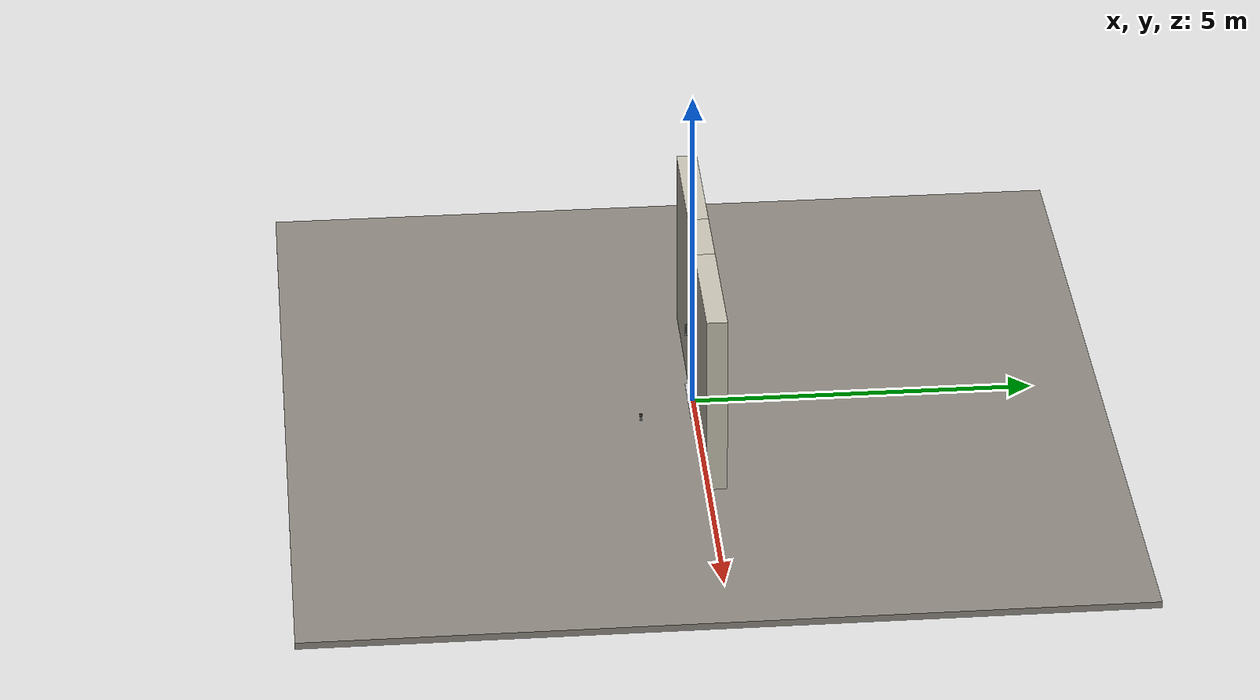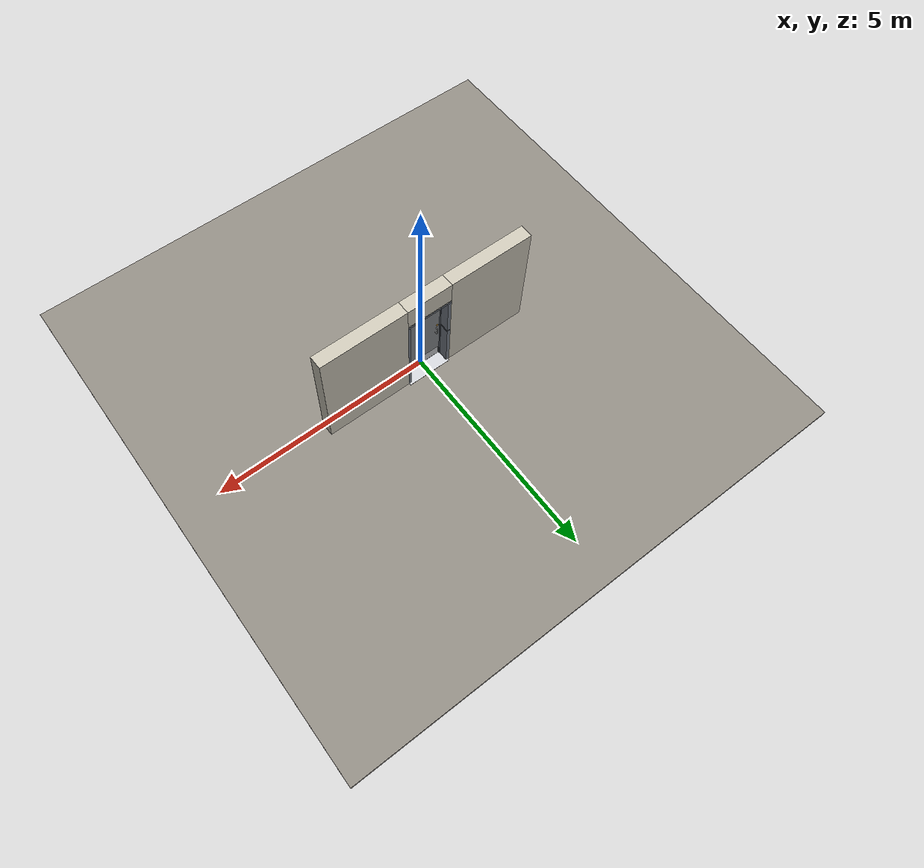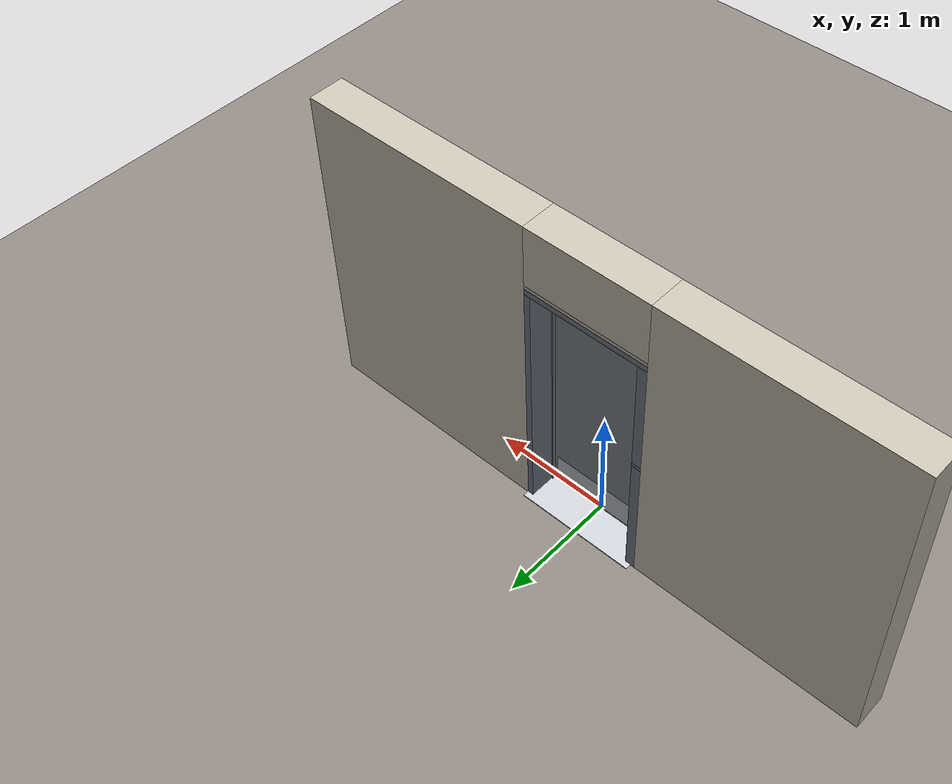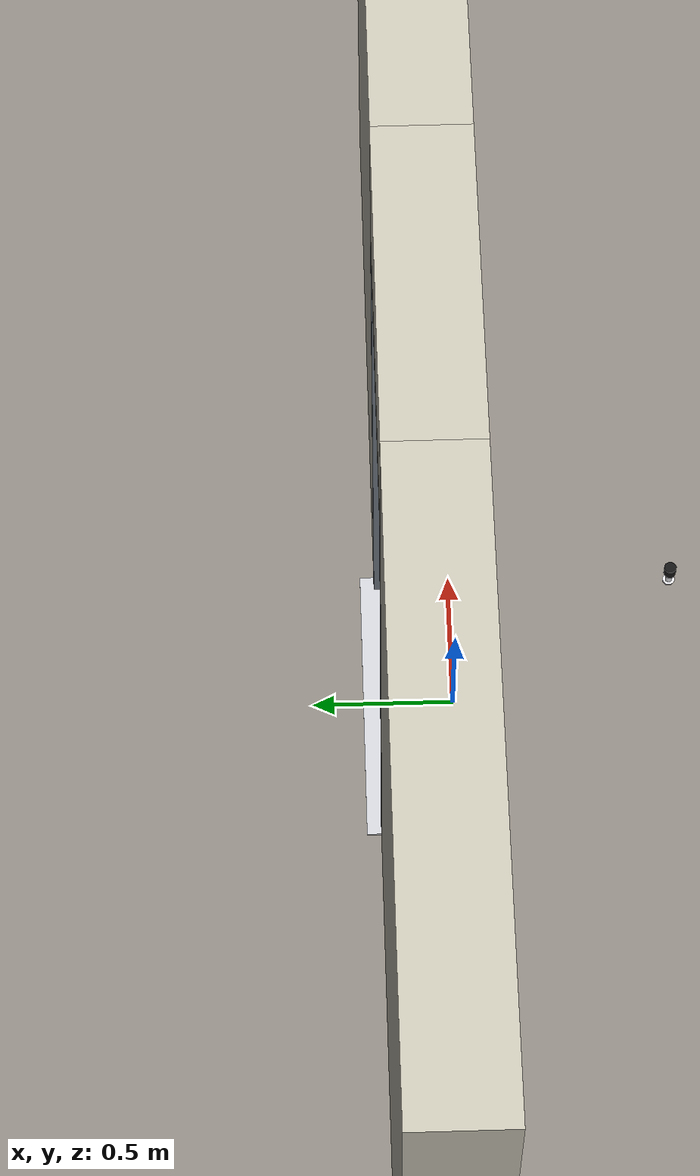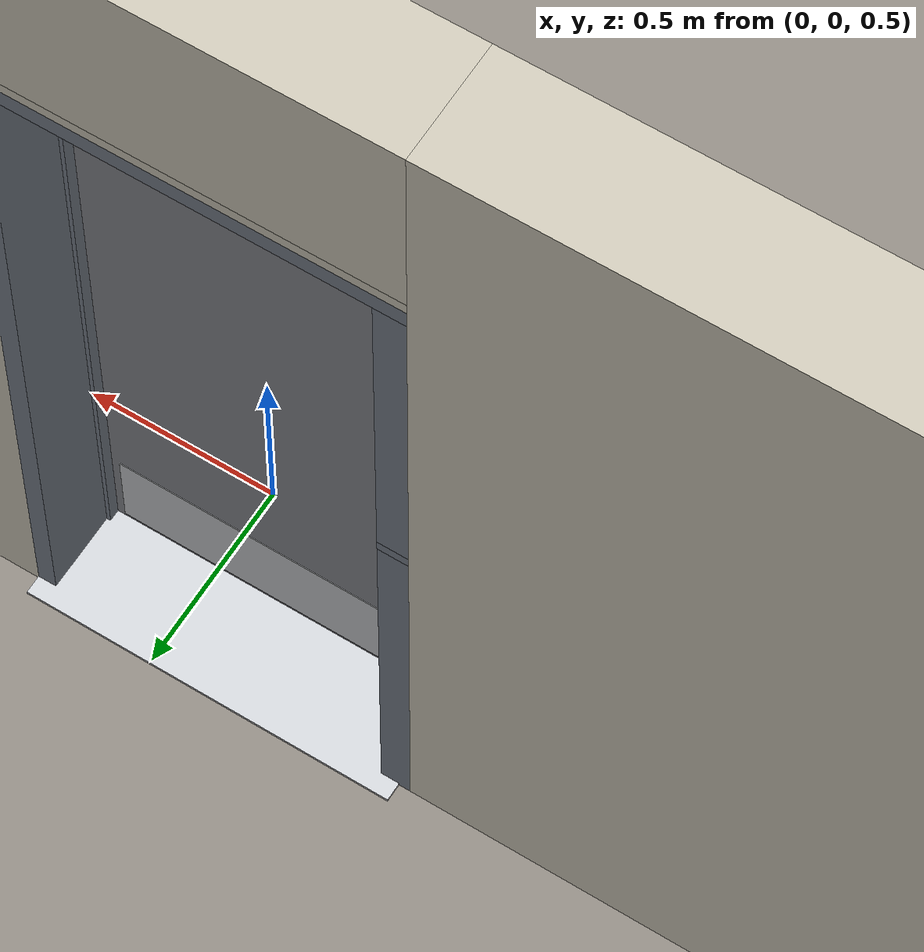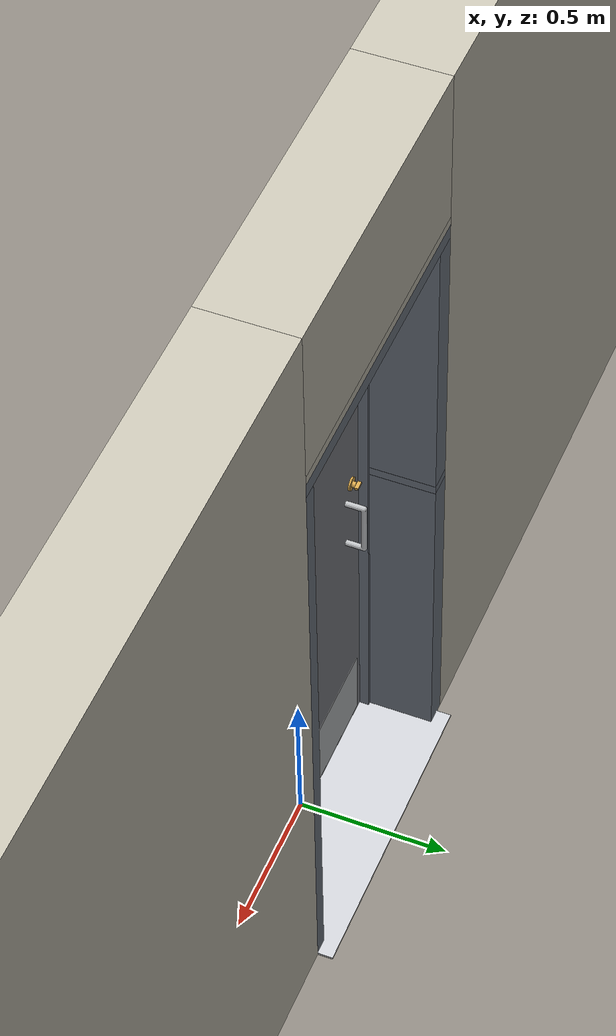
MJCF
<?xml version="1.0" ?>
<mujoco model="db0428_swing_single_full">
  <compiler angle="radian" meshdir="../../hardware" texturedir="../../textures" autolimits="true" inertiafromgeom="false"/>
  <option timestep="0.002" integrator="implicitfast" cone="elliptic" impratio="10" noslip_iterations="3">
    <flag multiccd="enable"/>
  </option>
  <size memory="16M"/>
  <default>
    <geom condim="4" solref="0.005 1" solimp="0.95 0.99 0.001"/>
    <joint solreflimit="0.005 1" solimplimit="0.95 0.99 0.001"/>
    <tendon solreflimit="0.005 1"/>
    <equality solref="0.002 1"/>
  </default>
  <visual>
    <headlight ambient="0.4 0.4 0.4" diffuse="0.7 0.7 0.7" specular="0.2 0.2 0.2"/>
    <quality shadowsize="4096"/>
    <map znear="0.01" zfar="60"/>
  </visual>
  <asset>
    <mesh name="cyl_face_e9e5036966" file="cyl_face_e9e5036966.obj"/>
    <mesh name="hinge_e22b26c0c1" file="hinge_e22b26c0c1.obj"/>
    <mesh name="hinge_jamb_e1d088f8dc" file="hinge_jamb_e1d088f8dc.obj"/>
    <mesh name="pull_1e5d69a91a" file="pull_1e5d69a91a.obj"/>
    <mesh name="thumbturn_eb5c9899a3" file="thumbturn_eb5c9899a3.obj"/>
    <material name="mat_floor" rgba="0.55 0.53 0.5 1" specular="0.2" shininess="0.15" reflectance="0"/>
    <material name="mat_wall" rgba="0.78 0.76 0.7 1" specular="0.2" shininess="0.1" reflectance="0"/>
    <material name="mat_leaf" rgba="0.5 0.51 0.53 1" specular="0.23" shininess="0.51" reflectance="0.02"/>
    <material name="mat_leaf_louver" rgba="0.425 0.433 0.451 1" specular="0.2" shininess="0.4" reflectance="0"/>
    <material name="mat_hinge" rgba="0.65 0.66 0.68 1" specular="0.74" shininess="0.5" reflectance="0.36"/>
    <material name="mat_op_stainless" rgba="0.75 0.76 0.77 1" specular="0.8" shininess="0.65" reflectance="0.4"/>
    <material name="mat_deadbolt" rgba="0.85 0.66 0.3 1" specular="0.8" shininess="0.75" reflectance="0.4"/>
    <material name="mat_frame" rgba="0.45 0.48 0.52 1" specular="0.32" shininess="0.6" reflectance="0.08"/>
    <material name="mat_seal" rgba="0.1 0.1 0.1 1" specular="0.2" shininess="0.1" reflectance="0"/>
    <material name="mat_threshold" rgba="0.8 0.81 0.83 1" specular="0.8" shininess="0.6" reflectance="0.4"/>
    <material name="mat_kick" rgba="0.75 0.76 0.77 1" specular="0.8" shininess="0.65" reflectance="0.4"/>
    <material name="mat_placard" rgba="0.95 0.75 0.05 1" specular="0.2" shininess="0.5" reflectance="0"/>
    <material name="mat_bumper_stop" rgba="0.08 0.08 0.08 1" specular="0.2" shininess="0.1" reflectance="0"/>
    <material name="mat_stop_base" rgba="0.9 0.9 0.92 1" specular="0.8" shininess="0.9" reflectance="0.4"/>
    <texture name="skybox" type="skybox" builtin="gradient" rgb1="0.6 0.7 0.85" rgb2="0.9 0.92 0.95" width="256" height="256"/>
  </asset>
  <worldbody>
    <light name="sun" pos="1.5 -2.5 4" dir="-0.3 0.5 -0.8" directional="true" diffuse="0.8 0.8 0.8" specular="0.3 0.3 0.3" castshadow="true"/>
    <light name="fill" pos="-1.5 2.5 3" dir="0.3 -0.5 -0.7" directional="true" diffuse="0.35 0.35 0.4" castshadow="false"/>
    <camera name="robot_view" pos="0 -2.516812 1.812087" xyaxes="1 0 0 0 0.26963 0.962964" fovy="52"/>
    <camera name="far_view" pos="0 2.758812 1.812087" xyaxes="-1 0 0 0 -0.26963 0.962964" fovy="52"/>
    <camera name="iso" pos="-2.004737 -2.094762 2.234138" xyaxes="0.741536 -0.670913 0 0.242917 0.268487 0.932151" fovy="46"/>
    <camera name="detail_handle" pos="-0.1715 -0.882 1.296" xyaxes="0.97561 0.219512 0 -0.070934 0.315262 0.94635" fovy="38"/>
    <geom name="floor" type="box" size="6 6 0.05" pos="0 0 -0.05" material="mat_floor" group="0" contype="1" conaffinity="1" friction="0.8 0.005 0.0001" density="2400"/>
    <geom name="wall_left" type="box" size="0.97975 0.15 1.3735" pos="-1.52025 0.121 1.3735" material="mat_wall" group="0" contype="1" conaffinity="1" friction="0.6 0.005 0.0001" density="800"/>
    <geom name="wall_right" type="box" size="0.99475 0.15 1.3735" pos="1.50525 0.121 1.3735" material="mat_wall" group="0" contype="1" conaffinity="1" friction="0.6 0.005 0.0001" density="800"/>
    <geom name="wall_header" type="box" size="0.5255 0.15 0.26" pos="-0.015 0.121 2.487" material="mat_wall" group="0" contype="1" conaffinity="1" friction="0.6 0.005 0.0001" density="800"/>
    <geom name="hinge_0_jamb" type="mesh" mesh="hinge_jamb_e1d088f8dc" pos="0.4575 -0.029 0.259" quat="0 0 1 0" material="mat_hinge" group="1" contype="0" conaffinity="0" density="7850"/>
    <geom name="hinge_1_jamb" type="mesh" mesh="hinge_jamb_e1d088f8dc" pos="0.4575 -0.029 1.076" quat="0 0 1 0" material="mat_hinge" group="1" contype="0" conaffinity="0" density="7850"/>
    <geom name="hinge_2_jamb" type="mesh" mesh="hinge_jamb_e1d088f8dc" pos="0.4575 -0.029 1.963" quat="0 0 1 0" material="mat_hinge" group="1" contype="0" conaffinity="0" density="7850"/>
    <geom name="leaf_deadbolt_strike_b" type="box" size="0.0155 0.003 0.0005" pos="-0.46 0 1.1375" quat="0.5 0.5 0.5 0.5" material="mat_deadbolt" group="1" contype="0" conaffinity="0" density="7800"/>
    <geom name="leaf_deadbolt_strike_l" type="box" size="0.003 0.0155 0.0005" pos="-0.46 -0.0125 1.156" quat="0.5 0.5 0.5 0.5" material="mat_deadbolt" group="1" contype="0" conaffinity="0" density="7800"/>
    <geom name="leaf_deadbolt_strike_t" type="box" size="0.0155 0.003 0.0005" pos="-0.46 0 1.1745" quat="0.5 0.5 0.5 0.5" material="mat_deadbolt" group="1" contype="0" conaffinity="0" density="7800"/>
    <geom name="leaf_deadbolt_strike_r" type="box" size="0.003 0.0155 0.0005" pos="-0.46 0.0125 1.156" quat="0.5 0.5 0.5 0.5" material="mat_deadbolt" group="1" contype="0" conaffinity="0" density="7800"/>
    <geom name="jamb_hinge" type="box" size="0.025 0.15 1.0735" pos="0.4855 0.121 1.0735" material="mat_frame" group="0" contype="1" conaffinity="1" friction="0.6 0.005 0.0001" density="300"/>
    <geom name="strike_1156_wall_n" type="box" size="0.04 0.13075 0.0155" pos="-0.5005 0.14025 1.156" material="mat_frame" group="0" contype="1" conaffinity="1" friction="0.6 0.005 0.0001" density="300"/>
    <geom name="strike_1156_wall_p" type="box" size="0.04 0.00975 0.0155" pos="-0.5005 -0.01925 1.156" material="mat_frame" group="0" contype="1" conaffinity="1" friction="0.6 0.005 0.0001" density="300"/>
    <geom name="strike_1156_back" type="box" size="0.0253 0.0095 0.0155" pos="-0.5152 0 1.156" material="mat_frame" group="0" contype="1" conaffinity="1" friction="0.6 0.005 0.0001" density="300"/>
    <geom name="jamb_strike_0" type="box" size="0.04 0.15 0.57025" pos="-0.5005 0.121 0.57025" material="mat_frame" group="0" contype="1" conaffinity="1" friction="0.6 0.005 0.0001" density="300"/>
    <geom name="jamb_strike_1" type="box" size="0.04 0.15 0.48775" pos="-0.5005 0.121 1.65925" material="mat_frame" group="0" contype="1" conaffinity="1" friction="0.6 0.005 0.0001" density="300"/>
    <geom name="jamb_head" type="box" size="0.5255 0.15 0.025" pos="-0.015 0.121 2.172" material="mat_frame" group="0" contype="1" conaffinity="1" friction="0.6 0.005 0.0001" density="300"/>
    <geom name="head_stud" type="box" size="0.5255 0.15 0.015" pos="-0.015 0.121 2.212" material="mat_wall" group="0" contype="1" conaffinity="1" friction="0.6 0.005 0.0001" density="500"/>
    <geom name="stop_hinge" type="box" size="0.0055 0.016 1.0735" pos="0.455 0.0385 1.0735" material="mat_frame" group="0" contype="1" conaffinity="1" friction="0.6 0.005 0.0001" density="300"/>
    <geom name="stop_strike" type="box" size="0.0055 0.016 1.0735" pos="-0.455 0.0385 1.0735" material="mat_frame" group="0" contype="1" conaffinity="1" friction="0.6 0.005 0.0001" density="300"/>
    <geom name="stop_head" type="box" size="0.4605 0.016 0.0055" pos="0 0.0385 2.1415" material="mat_frame" group="0" contype="1" conaffinity="1" friction="0.6 0.005 0.0001" density="300"/>
    <geom name="seal_hinge" type="box" size="0.004 0.003 1.0735" pos="0.4575 0.025 1.0735" material="mat_seal" group="1" contype="0" conaffinity="0" density="1100"/>
    <geom name="seal_strike" type="box" size="0.004 0.003 1.0735" pos="-0.4575 0.025 1.0735" material="mat_seal" group="1" contype="0" conaffinity="0" density="1100"/>
    <geom name="seal_head" type="box" size="0.4405 0.003 0.008" pos="0 0.025 2.135" material="mat_seal" group="1" contype="0" conaffinity="0" density="1100"/>
    <geom name="threshold" type="box" size="0.5105 0.2 0.004" pos="0 0.121 0.004" material="mat_threshold" group="0" contype="1" conaffinity="1" friction="0.6 0.005 0.0001" density="2700"/>
    <geom name="door_stop_base" type="cylinder" size="0.022 0.003" pos="0.4735 -0.8059 0.003" material="mat_stop_base" group="0" contype="1" conaffinity="1" friction="0.6 0.005 0.0001" density="7850"/>
    <geom name="door_stop_post" type="cylinder" size="0.012 0.0245" pos="0.4735 -0.8059 0.0305" material="mat_stop_base" group="0" contype="1" conaffinity="1" friction="0.6 0.005 0.0001" density="7850"/>
    <geom name="door_stop_bumper" type="cylinder" size="0.022 0.02" pos="0.4735 -0.8059 0.075" material="mat_bumper_stop" group="0" contype="1" conaffinity="1" friction="0.6 0.005 0.0001" density="1100"/>
    <site name="approach_point" pos="0 -1.5 0" quat="1 0 0 0" size="0.05" rgba="0.2 0.9 0.2 0.5" group="4"/>
    <site name="goal_point" pos="0 1.5 0" quat="1 0 0 0" size="0.05" rgba="0.2 0.9 0.2 0.5" group="4"/>
    <site name="door_plane_center" pos="0 0 1.0735" quat="1 0 0 0" size="0.02" rgba="0.2 0.9 0.2 0.5" group="4"/>
    <body name="leaf" pos="0.4605 0 0">
      <inertial pos="-0.460652 0.000849 1.027629" mass="49.950814" quat="0.500692 -0.499939 -0.498682 -0.500684" diaginertia="3.618713003 19.841134663 23.432025476"/>
      <joint name="leaf_hinge" type="hinge" axis="0 0 1" pos="-0.003 -0.029 0" limited="true" range="0 1.570796" solreflimit="0.02 1" damping="0.318966" frictionloss="1.630428" armature="0.02"/>
      <geom name="leaf_slab" type="box" size="0.457 0.022 1.067" pos="-0.46 0 1.076" material="mat_leaf" group="0" contype="1" conaffinity="1" friction="0.4 0.005 0.0001" density="1"/>
      <geom name="leaf_louver_0" type="box" size="0.2285 0.002 0.02625" pos="-0.46 0 0.284" quat="0.953717 0.300706 0 0" material="mat_leaf_louver" group="1" contype="0" conaffinity="0" density="1"/>
      <geom name="leaf_louver_1" type="box" size="0.2285 0.002 0.02625" pos="-0.46 0 0.334" quat="0.953717 0.300706 0 0" material="mat_leaf_louver" group="1" contype="0" conaffinity="0" density="1"/>
      <geom name="leaf_louver_2" type="box" size="0.2285 0.002 0.02625" pos="-0.46 0 0.384" quat="0.953717 0.300706 0 0" material="mat_leaf_louver" group="1" contype="0" conaffinity="0" density="1"/>
      <geom name="leaf_louver_3" type="box" size="0.2285 0.002 0.02625" pos="-0.46 0 0.434" quat="0.953717 0.300706 0 0" material="mat_leaf_louver" group="1" contype="0" conaffinity="0" density="1"/>
      <geom name="leaf_louver_4" type="box" size="0.2285 0.002 0.02625" pos="-0.46 0 0.484" quat="0.953717 0.300706 0 0" material="mat_leaf_louver" group="1" contype="0" conaffinity="0" density="1"/>
      <geom name="leaf_louver_5" type="box" size="0.2285 0.002 0.02625" pos="-0.46 0 0.534" quat="0.953717 0.300706 0 0" material="mat_leaf_louver" group="1" contype="0" conaffinity="0" density="1"/>
      <geom name="leaf_louver_6" type="box" size="0.2285 0.002 0.02625" pos="-0.46 0 0.584" quat="0.953717 0.300706 0 0" material="mat_leaf_louver" group="1" contype="0" conaffinity="0" density="1"/>
      <geom name="leaf_louver_7" type="box" size="0.2285 0.002 0.02625" pos="-0.46 0 0.634" quat="0.953717 0.300706 0 0" material="mat_leaf_louver" group="1" contype="0" conaffinity="0" density="1"/>
      <geom name="leaf_louver_8" type="box" size="0.2285 0.002 0.02625" pos="-0.46 0 0.684" quat="0.953717 0.300706 0 0" material="mat_leaf_louver" group="1" contype="0" conaffinity="0" density="1"/>
      <geom name="hinge_0" type="mesh" mesh="hinge_e22b26c0c1" pos="-0.003 -0.029 0.259" quat="0 0 1 0" material="mat_hinge" group="1" contype="0" conaffinity="0" density="7850"/>
      <geom name="hinge_1" type="mesh" mesh="hinge_e22b26c0c1" pos="-0.003 -0.029 1.076" quat="0 0 1 0" material="mat_hinge" group="1" contype="0" conaffinity="0" density="7850"/>
      <geom name="hinge_2" type="mesh" mesh="hinge_e22b26c0c1" pos="-0.003 -0.029 1.963" quat="0 0 1 0" material="mat_hinge" group="1" contype="0" conaffinity="0" density="7850"/>
      <geom name="leaf_pull_n" type="mesh" mesh="pull_1e5d69a91a" pos="-0.812 -0.022 1.016" quat="0 0 -0.707107 0.707107" material="mat_op_stainless" group="1" contype="0" conaffinity="0" density="3000"/>
      <geom name="leaf_pull_col_n" type="capsule" size="0.0095 0.08" pos="-0.812 -0.082 1.016" material="mat_op_stainless" group="3" contype="1" conaffinity="1" rgba="0.8 0.3 0.3 0.25" friction="0.7 0.01 0.0001" density="3000"/>
      <geom name="leaf_pull_p" type="mesh" mesh="pull_1e5d69a91a" pos="-0.812 0.022 1.016" quat="0 0 0.707107 0.707107" material="mat_op_stainless" group="1" contype="0" conaffinity="0" density="3000"/>
      <geom name="leaf_pull_col_p" type="capsule" size="0.0095 0.08" pos="-0.812 0.082 1.016" material="mat_op_stainless" group="3" contype="1" conaffinity="1" rgba="0.8 0.3 0.3 0.25" friction="0.7 0.01 0.0001" density="3000"/>
      <geom name="leaf_deadbolt_faceplate" type="box" size="0.0006 0.014 0.0245" pos="-0.9164 0 1.156" material="mat_deadbolt" group="1" contype="0" conaffinity="0" density="8500"/>
      <geom name="leaf_deadbolt_cylinder_face" type="mesh" mesh="cyl_face_e9e5036966" pos="-0.852 -0.022 1.156" quat="0 0 -0.707107 0.707107" material="mat_deadbolt" group="1" contype="0" conaffinity="0" density="7100"/>
      <geom name="kick_plate_p" type="box" size="0.427 0.0008 0.125" pos="-0.46 0.0228 0.144" material="mat_kick" group="2" contype="0" conaffinity="0" density="7900"/>
      <geom name="warning_placard" type="box" size="0.11 0.001 0.08" pos="-0.46 -0.023 1.6095" material="mat_placard" group="2" contype="0" conaffinity="0" density="1000"/>
      <site name="leaf_pull_grip_n" pos="-0.812 -0.082 1.016" quat="1 0 0 0" size="0.012" rgba="0.2 0.9 0.2 0.5" group="4"/>
      <site name="leaf_pull_grip_p" pos="-0.812 0.082 1.016" quat="1 0 0 0" size="0.012" rgba="0.2 0.9 0.2 0.5" group="4"/>
      <site name="leaf_edge_mid" pos="-0.917 0 1.067" quat="1 0 0 0" size="0.02" rgba="0.2 0.9 0.2 0.5" group="4"/>
      <body name="leaf_deadbolt" pos="-0.917 0 1.156">
        <inertial pos="0.0277 0 0" mass="0.18836" quat="0 0 0.707107 0.707107" diaginertia="0.000013829 0.000052194 0.000057986"/>
        <joint name="leaf_deadbolt_slide" type="slide" axis="1 0 0" limited="true" range="0 0.0254" damping="5" frictionloss="1.5" armature="0.1" ref="0.0254"/>
        <geom name="leaf_deadbolt_box" type="box" size="0.0277 0.008 0.0125" pos="0.0277 0 0" material="mat_deadbolt" group="0" contype="1" conaffinity="1" friction="0.3 0.005 0.0001" density="8500"/>
      </body>
      <body name="leaf_deadbolt_thumbturn" pos="-0.852 0.022 1.156">
        <inertial pos="0 0.012928 0" mass="0.178946" quat="0.000001 -0.707107 0.707107 -0.000001" diaginertia="0.000026045 0.000026215 0.000032438"/>
        <joint name="leaf_deadbolt_thumbturn_hinge" type="hinge" axis="0 -1 0" limited="true" range="0 1.5708" damping="0.05" frictionloss="0.35" armature="0.005" ref="1.5708"/>
        <geom name="leaf_deadbolt_thumbturn_mesh" type="mesh" mesh="thumbturn_eb5c9899a3" pos="0 0 0" quat="0.500001 -0.500001 0.499999 0.499999" material="mat_deadbolt" group="0" contype="1" conaffinity="1" friction="0.6 0.005 0.0001" density="7100"/>
        <geom name="leaf_deadbolt_thumbturn_col" type="box" size="0.006 0.012 0.016" pos="0 0.02 0" quat="0.707105 0 -0.707108 0" material="mat_deadbolt" group="3" contype="1" conaffinity="1" rgba="0.8 0.3 0.3 0.25" friction="0.6 0.005 0.0001" density="7100"/>
      </body>
    </body>
  </worldbody>
  <equality>
    <joint name="leaf_deadbolt_couple" joint1="leaf_deadbolt_slide" joint2="leaf_deadbolt_thumbturn_hinge" polycoef="0 0.01617 0 0 0" active="true"/>
  </equality>
  <contact>
    <exclude body1="leaf_deadbolt" body2="leaf_deadbolt_thumbturn"/>
  </contact>
  <sensor>
    <jointpos name="leaf_hinge_pos" joint="leaf_hinge"/>
    <jointvel name="leaf_hinge_vel" joint="leaf_hinge"/>
    <jointpos name="leaf_deadbolt_slide_pos" joint="leaf_deadbolt_slide"/>
    <jointvel name="leaf_deadbolt_slide_vel" joint="leaf_deadbolt_slide"/>
    <jointpos name="leaf_deadbolt_thumbturn_hinge_pos" joint="leaf_deadbolt_thumbturn_hinge"/>
    <jointvel name="leaf_deadbolt_thumbturn_hinge_vel" joint="leaf_deadbolt_thumbturn_hinge"/>
  </sensor>
</mujoco>
